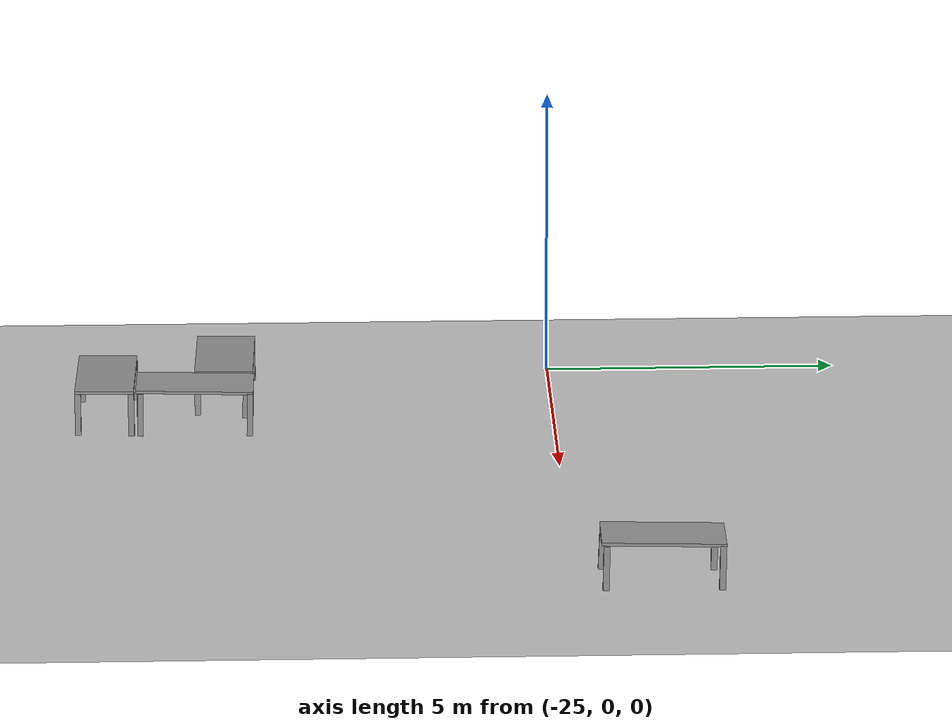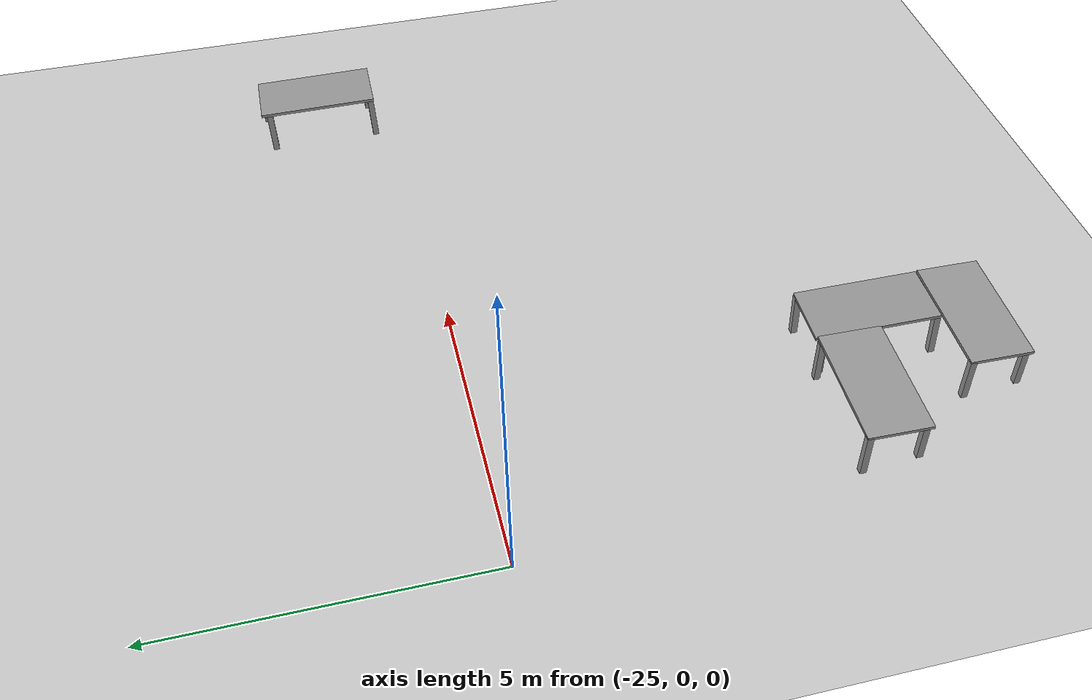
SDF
<sdf version="1.6">
 <world name="default">
  <model name="ground_plane">
   <static>1</static>
   <link name="link">
    <collision name="collision">
     <geometry><plane><normal>0 0 1</normal><size>100 100</size></plane></geometry>
     <surface><friction><ode><mu>100</mu><mu2>50</mu2></ode></friction></surface>
    </collision>
    <visual name="visual">
     <cast_shadows>0</cast_shadows>
     <geometry><plane><normal>0 0 1</normal><size>100 100</size></plane></geometry>
     <material>
      <script><uri>file://media/materials/scripts/gazebo.material</uri><name>Gazebo/Grey</name></script>
     </material>
    </visual>
   </link>
  </model>
  <model name="table">
   <link name="link_2">
    <pose>-0.000914 0.01077 -0.287764 0 -0 0</pose>
    <inertial>
     <mass>1</mass>
     <inertia>
      <ixx>0.166667</ixx>
      <ixy>0</ixy>
      <ixz>0</ixz>
      <iyy>0.166667</iyy>
      <iyz>0</iyz>
      <izz>0.166667</izz>
     </inertia>
    </inertial>
    <visual name="visual">
     <pose>0 0 0.75 0 -0 0</pose>
     <geometry><box><size>1 2 0.05</size></box></geometry>
     <material>
      <lighting>1</lighting>
      <script><uri>file://media/materials/scripts/gazebo.material</uri><name>Gazebo/Grey</name></script>
      <ambient>0.3 0.3 0.3 1</ambient>
      <diffuse>0.7 0.7 0.7 1</diffuse>
      <specular>0.01 0.01 0.01 1</specular>
      <emissive>0 0 0 1</emissive>
      <shader type="vertex"><normal_map>__default__</normal_map></shader>
     </material>
    </visual>
    <collision name="collision">
     <pose>0 0 0.75 0 -0 0</pose>
     <geometry><box><size>1 2 0.05</size></box></geometry>
     <surface>
      <friction>
       <ode><mu>1</mu><mu2>1</mu2><fdir1>0 0 0</fdir1><slip1>0</slip1><slip2>0</slip2></ode>
       <torsional>
        <coefficient>1</coefficient>
        <patch_radius>0</patch_radius>
        <surface_radius>0</surface_radius>
        <use_patch_radius>1</use_patch_radius>
        <ode><slip>0</slip></ode>
       </torsional>
      </friction>
      <bounce><restitution_coefficient>0</restitution_coefficient><threshold>1e+06</threshold></bounce>
      <contact>
       <collide_without_contact>0</collide_without_contact>
       <collide_without_contact_bitmask>1</collide_without_contact_bitmask>
       <collide_bitmask>1</collide_bitmask>
       <ode>
        <soft_cfm>0</soft_cfm>
        <soft_erp>0.2</soft_erp>
        <kp>1e+13</kp>
        <kd>1</kd>
        <max_vel>0.01</max_vel>
        <min_depth>0</min_depth>
       </ode>
       <bullet>
        <split_impulse>1</split_impulse>
        <split_impulse_penetration_threshold>-0.01</split_impulse_penetration_threshold>
        <soft_cfm>0</soft_cfm>
        <soft_erp>0.2</soft_erp>
        <kp>1e+13</kp>
        <kd>1</kd>
       </bullet>
      </contact>
     </surface>
    </collision>
   </link>
   <link name="link_3">
    <pose>-0.450914 0.87078 0.080236 0 -0 0</pose>
    <inertial>
     <mass>1</mass>
     <inertia>
      <ixx>0.166667</ixx>
      <ixy>0</ixy>
      <ixz>0</ixz>
      <iyy>0.166667</iyy>
      <iyz>0</iyz>
      <izz>0.166667</izz>
     </inertia>
    </inertial>
    <visual name="visual">
     <geometry><box><size>0.1 0.1 0.75</size></box></geometry>
     <material>
      <lighting>1</lighting>
      <script><uri>file://media/materials/scripts/gazebo.material</uri><name>Gazebo/Grey</name></script>
      <ambient>0.3 0.3 0.3 1</ambient>
      <diffuse>0.7 0.7 0.7 1</diffuse>
      <specular>0.01 0.01 0.01 1</specular>
      <emissive>0 0 0 1</emissive>
      <shader type="vertex"><normal_map>__default__</normal_map></shader>
     </material>
    </visual>
    <collision name="collision">
     <geometry><box><size>0.1 0.1 0.75</size></box></geometry>
     <surface>
      <friction>
       <ode><mu>1</mu><mu2>1</mu2><fdir1>0 0 0</fdir1><slip1>0</slip1><slip2>0</slip2></ode>
       <torsional>
        <coefficient>1</coefficient>
        <patch_radius>0</patch_radius>
        <surface_radius>0</surface_radius>
        <use_patch_radius>1</use_patch_radius>
        <ode><slip>0</slip></ode>
       </torsional>
      </friction>
      <bounce><restitution_coefficient>0</restitution_coefficient><threshold>1e+06</threshold></bounce>
      <contact>
       <collide_without_contact>0</collide_without_contact>
       <collide_without_contact_bitmask>1</collide_without_contact_bitmask>
       <collide_bitmask>1</collide_bitmask>
       <ode>
        <soft_cfm>0</soft_cfm>
        <soft_erp>0.2</soft_erp>
        <kp>1e+13</kp>
        <kd>1</kd>
        <max_vel>0.01</max_vel>
        <min_depth>0</min_depth>
       </ode>
       <bullet>
        <split_impulse>1</split_impulse>
        <split_impulse_penetration_threshold>-0.01</split_impulse_penetration_threshold>
        <soft_cfm>0</soft_cfm>
        <soft_erp>0.2</soft_erp>
        <kp>1e+13</kp>
        <kd>1</kd>
       </bullet>
      </contact>
     </surface>
    </collision>
   </link>
   <link name="link_3_clone_0">
    <pose>0.45366 -0.903088 0.047057 0 -0 0</pose>
    <inertial>
     <mass>1</mass>
     <inertia>
      <ixx>0.166667</ixx>
      <ixy>0</ixy>
      <ixz>0</ixz>
      <iyy>0.166667</iyy>
      <iyz>0</iyz>
      <izz>0.166667</izz>
     </inertia>
    </inertial>
    <visual name="visual">
     <geometry><box><size>0.1 0.1 0.75</size></box></geometry>
     <material>
      <lighting>1</lighting>
      <script><uri>file://media/materials/scripts/gazebo.material</uri><name>Gazebo/Grey</name></script>
      <ambient>0.3 0.3 0.3 1</ambient>
      <diffuse>0.7 0.7 0.7 1</diffuse>
      <specular>0.01 0.01 0.01 1</specular>
      <emissive>0 0 0 1</emissive>
      <shader type="vertex"><normal_map>__default__</normal_map></shader>
     </material>
    </visual>
    <collision name="collision">
     <geometry><box><size>0.1 0.1 0.75</size></box></geometry>
     <surface>
      <friction>
       <ode><mu>1</mu><mu2>1</mu2><fdir1>0 0 0</fdir1><slip1>0</slip1><slip2>0</slip2></ode>
       <torsional>
        <coefficient>1</coefficient>
        <patch_radius>0</patch_radius>
        <surface_radius>0</surface_radius>
        <use_patch_radius>1</use_patch_radius>
        <ode><slip>0</slip></ode>
       </torsional>
      </friction>
      <bounce><restitution_coefficient>0</restitution_coefficient><threshold>1e+06</threshold></bounce>
      <contact>
       <collide_without_contact>0</collide_without_contact>
       <collide_without_contact_bitmask>1</collide_without_contact_bitmask>
       <collide_bitmask>1</collide_bitmask>
       <ode>
        <soft_cfm>0</soft_cfm>
        <soft_erp>0.2</soft_erp>
        <kp>1e+13</kp>
        <kd>1</kd>
        <max_vel>0.01</max_vel>
        <min_depth>0</min_depth>
       </ode>
       <bullet>
        <split_impulse>1</split_impulse>
        <split_impulse_penetration_threshold>-0.01</split_impulse_penetration_threshold>
        <soft_cfm>0</soft_cfm>
        <soft_erp>0.2</soft_erp>
        <kp>1e+13</kp>
        <kd>1</kd>
       </bullet>
      </contact>
     </surface>
    </collision>
   </link>
   <link name="link_3_clone_0_clone">
    <pose>-0.450914 -0.93923 0.080236 -0.02 0 0</pose>
    <inertial>
     <mass>1</mass>
     <inertia>
      <ixx>0.166667</ixx>
      <ixy>0</ixy>
      <ixz>0</ixz>
      <iyy>0.166667</iyy>
      <iyz>0</iyz>
      <izz>0.166667</izz>
     </inertia>
    </inertial>
    <visual name="visual">
     <geometry><box><size>0.1 0.1 0.75</size></box></geometry>
     <material>
      <lighting>1</lighting>
      <script><uri>file://media/materials/scripts/gazebo.material</uri><name>Gazebo/Grey</name></script>
      <ambient>0.3 0.3 0.3 1</ambient>
      <diffuse>0.7 0.7 0.7 1</diffuse>
      <specular>0.01 0.01 0.01 1</specular>
      <emissive>0 0 0 1</emissive>
      <shader type="vertex"><normal_map>__default__</normal_map></shader>
     </material>
    </visual>
    <collision name="collision">
     <geometry><box><size>0.1 0.1 0.75</size></box></geometry>
     <surface>
      <friction>
       <ode><mu>1</mu><mu2>1</mu2><fdir1>0 0 0</fdir1><slip1>0</slip1><slip2>0</slip2></ode>
       <torsional>
        <coefficient>1</coefficient>
        <patch_radius>0</patch_radius>
        <surface_radius>0</surface_radius>
        <use_patch_radius>1</use_patch_radius>
        <ode><slip>0</slip></ode>
       </torsional>
      </friction>
      <bounce><restitution_coefficient>0</restitution_coefficient><threshold>1e+06</threshold></bounce>
      <contact>
       <collide_without_contact>0</collide_without_contact>
       <collide_without_contact_bitmask>1</collide_without_contact_bitmask>
       <collide_bitmask>1</collide_bitmask>
       <ode>
        <soft_cfm>0</soft_cfm>
        <soft_erp>0.2</soft_erp>
        <kp>1e+13</kp>
        <kd>1</kd>
        <max_vel>0.01</max_vel>
        <min_depth>0</min_depth>
       </ode>
       <bullet>
        <split_impulse>1</split_impulse>
        <split_impulse_penetration_threshold>-0.01</split_impulse_penetration_threshold>
        <soft_cfm>0</soft_cfm>
        <soft_erp>0.2</soft_erp>
        <kp>1e+13</kp>
        <kd>1</kd>
       </bullet>
      </contact>
     </surface>
    </collision>
   </link>
   <link name="link_3_clone_1">
    <pose>0.449089 0.960775 0.080236 0 -0 0</pose>
    <inertial>
     <mass>1</mass>
     <inertia>
      <ixx>0.166667</ixx>
      <ixy>0</ixy>
      <ixz>0</ixz>
      <iyy>0.166667</iyy>
      <iyz>0</iyz>
      <izz>0.166667</izz>
     </inertia>
    </inertial>
    <visual name="visual">
     <geometry><box><size>0.1 0.1 0.75</size></box></geometry>
     <material>
      <lighting>1</lighting>
      <script><uri>file://media/materials/scripts/gazebo.material</uri><name>Gazebo/Grey</name></script>
      <ambient>0.3 0.3 0.3 1</ambient>
      <diffuse>0.7 0.7 0.7 1</diffuse>
      <specular>0.01 0.01 0.01 1</specular>
      <emissive>0 0 0 1</emissive>
      <shader type="vertex"><normal_map>__default__</normal_map></shader>
     </material>
    </visual>
    <collision name="collision">
     <geometry><box><size>0.1 0.1 0.75</size></box></geometry>
     <surface>
      <friction>
       <ode><mu>1</mu><mu2>1</mu2><fdir1>0 0 0</fdir1><slip1>0</slip1><slip2>0</slip2></ode>
       <torsional>
        <coefficient>1</coefficient>
        <patch_radius>0</patch_radius>
        <surface_radius>0</surface_radius>
        <use_patch_radius>1</use_patch_radius>
        <ode><slip>0</slip></ode>
       </torsional>
      </friction>
      <bounce><restitution_coefficient>0</restitution_coefficient><threshold>1e+06</threshold></bounce>
      <contact>
       <collide_without_contact>0</collide_without_contact>
       <collide_without_contact_bitmask>1</collide_without_contact_bitmask>
       <collide_bitmask>1</collide_bitmask>
       <ode>
        <soft_cfm>0</soft_cfm>
        <soft_erp>0.2</soft_erp>
        <kp>1e+13</kp>
        <kd>1</kd>
        <max_vel>0.01</max_vel>
        <min_depth>0</min_depth>
       </ode>
       <bullet>
        <split_impulse>1</split_impulse>
        <split_impulse_penetration_threshold>-0.01</split_impulse_penetration_threshold>
        <soft_cfm>0</soft_cfm>
        <soft_erp>0.2</soft_erp>
        <kp>1e+13</kp>
        <kd>1</kd>
       </bullet>
      </contact>
     </surface>
    </collision>
   </link>
   <joint name="link_2_JOINT_10" type="fixed">
    <parent>link_2</parent>
    <child>link_3_clone_1</child>
    <physics>
     <ode><limit><cfm>0</cfm><erp>0.2</erp></limit><suspension><cfm>0</cfm><erp>0.2</erp></suspension></ode>
    </physics>
   </joint>
   <joint name="link_2_JOINT_11" type="fixed">
    <parent>link_2</parent>
    <child>link_3</child>
    <physics>
     <ode><limit><cfm>0</cfm><erp>0.2</erp></limit><suspension><cfm>0</cfm><erp>0.2</erp></suspension></ode>
    </physics>
   </joint>
   <joint name="link_2_JOINT_12" type="fixed">
    <parent>link_2</parent>
    <child>link_3_clone_0_clone</child>
    <physics>
     <ode><limit><cfm>0</cfm><erp>0.2</erp></limit><suspension><cfm>0</cfm><erp>0.2</erp></suspension></ode>
    </physics>
   </joint>
   <joint name="link_2_JOINT_8" type="fixed">
    <parent>link_2</parent>
    <child>link_3_clone_0</child>
    <physics>
     <ode><limit><cfm>0</cfm><erp>0.2</erp></limit><suspension><cfm>0</cfm><erp>0.2</erp></suspension></ode>
    </physics>
   </joint>
   <joint name="link_2_JOINT_9" type="fixed">
    <parent>link_2</parent>
    <child>link_3</child>
    <physics>
     <ode><limit><cfm>0</cfm><erp>0.2</erp></limit><suspension><cfm>0</cfm><erp>0.2</erp></suspension></ode>
    </physics>
   </joint>
   <static>0</static>
   <pose>-14.5412 1.38149 0.311988 -0.01779 -0.001786 -0.013764</pose>
  </model>
  <model name="table_0">
   <link name="link_2">
    <pose>-0.000914 0.01077 -0.287764 0 -0 0</pose>
    <inertial>
     <mass>1</mass>
     <inertia>
      <ixx>0.166667</ixx>
      <ixy>0</ixy>
      <ixz>0</ixz>
      <iyy>0.166667</iyy>
      <iyz>0</iyz>
      <izz>0.166667</izz>
     </inertia>
    </inertial>
    <visual name="visual">
     <pose>0 0 0.75 0 -0 0</pose>
     <geometry><box><size>1 2 0.05</size></box></geometry>
     <material>
      <lighting>1</lighting>
      <script><uri>file://media/materials/scripts/gazebo.material</uri><name>Gazebo/Grey</name></script>
      <ambient>0.3 0.3 0.3 1</ambient>
      <diffuse>0.7 0.7 0.7 1</diffuse>
      <specular>0.01 0.01 0.01 1</specular>
      <emissive>0 0 0 1</emissive>
      <shader type="vertex"><normal_map>__default__</normal_map></shader>
     </material>
    </visual>
    <collision name="collision">
     <pose>0 0 0.75 0 -0 0</pose>
     <geometry><box><size>1 2 0.05</size></box></geometry>
     <surface>
      <friction>
       <ode><mu>1</mu><mu2>1</mu2><fdir1>0 0 0</fdir1><slip1>0</slip1><slip2>0</slip2></ode>
       <torsional>
        <coefficient>1</coefficient>
        <patch_radius>0</patch_radius>
        <surface_radius>0</surface_radius>
        <use_patch_radius>1</use_patch_radius>
        <ode><slip>0</slip></ode>
       </torsional>
      </friction>
      <bounce><restitution_coefficient>0</restitution_coefficient><threshold>1e+06</threshold></bounce>
      <contact>
       <collide_without_contact>0</collide_without_contact>
       <collide_without_contact_bitmask>1</collide_without_contact_bitmask>
       <collide_bitmask>1</collide_bitmask>
       <ode>
        <soft_cfm>0</soft_cfm>
        <soft_erp>0.2</soft_erp>
        <kp>1e+13</kp>
        <kd>1</kd>
        <max_vel>0.01</max_vel>
        <min_depth>0</min_depth>
       </ode>
       <bullet>
        <split_impulse>1</split_impulse>
        <split_impulse_penetration_threshold>-0.01</split_impulse_penetration_threshold>
        <soft_cfm>0</soft_cfm>
        <soft_erp>0.2</soft_erp>
        <kp>1e+13</kp>
        <kd>1</kd>
       </bullet>
      </contact>
     </surface>
    </collision>
   </link>
   <link name="link_3">
    <pose>-0.450914 0.87078 0.080236 0 -0 0</pose>
    <inertial>
     <mass>1</mass>
     <inertia>
      <ixx>0.166667</ixx>
      <ixy>0</ixy>
      <ixz>0</ixz>
      <iyy>0.166667</iyy>
      <iyz>0</iyz>
      <izz>0.166667</izz>
     </inertia>
    </inertial>
    <visual name="visual">
     <geometry><box><size>0.1 0.1 0.75</size></box></geometry>
     <material>
      <lighting>1</lighting>
      <script><uri>file://media/materials/scripts/gazebo.material</uri><name>Gazebo/Grey</name></script>
      <ambient>0.3 0.3 0.3 1</ambient>
      <diffuse>0.7 0.7 0.7 1</diffuse>
      <specular>0.01 0.01 0.01 1</specular>
      <emissive>0 0 0 1</emissive>
      <shader type="vertex"><normal_map>__default__</normal_map></shader>
     </material>
    </visual>
    <collision name="collision">
     <geometry><box><size>0.1 0.1 0.75</size></box></geometry>
     <surface>
      <friction>
       <ode><mu>1</mu><mu2>1</mu2><fdir1>0 0 0</fdir1><slip1>0</slip1><slip2>0</slip2></ode>
       <torsional>
        <coefficient>1</coefficient>
        <patch_radius>0</patch_radius>
        <surface_radius>0</surface_radius>
        <use_patch_radius>1</use_patch_radius>
        <ode><slip>0</slip></ode>
       </torsional>
      </friction>
      <bounce><restitution_coefficient>0</restitution_coefficient><threshold>1e+06</threshold></bounce>
      <contact>
       <collide_without_contact>0</collide_without_contact>
       <collide_without_contact_bitmask>1</collide_without_contact_bitmask>
       <collide_bitmask>1</collide_bitmask>
       <ode>
        <soft_cfm>0</soft_cfm>
        <soft_erp>0.2</soft_erp>
        <kp>1e+13</kp>
        <kd>1</kd>
        <max_vel>0.01</max_vel>
        <min_depth>0</min_depth>
       </ode>
       <bullet>
        <split_impulse>1</split_impulse>
        <split_impulse_penetration_threshold>-0.01</split_impulse_penetration_threshold>
        <soft_cfm>0</soft_cfm>
        <soft_erp>0.2</soft_erp>
        <kp>1e+13</kp>
        <kd>1</kd>
       </bullet>
      </contact>
     </surface>
    </collision>
   </link>
   <link name="link_3_clone_0">
    <pose>0.45366 -0.903088 0.047057 0 -0 0</pose>
    <inertial>
     <mass>1</mass>
     <inertia>
      <ixx>0.166667</ixx>
      <ixy>0</ixy>
      <ixz>0</ixz>
      <iyy>0.166667</iyy>
      <iyz>0</iyz>
      <izz>0.166667</izz>
     </inertia>
    </inertial>
    <visual name="visual">
     <geometry><box><size>0.1 0.1 0.75</size></box></geometry>
     <material>
      <lighting>1</lighting>
      <script><uri>file://media/materials/scripts/gazebo.material</uri><name>Gazebo/Grey</name></script>
      <ambient>0.3 0.3 0.3 1</ambient>
      <diffuse>0.7 0.7 0.7 1</diffuse>
      <specular>0.01 0.01 0.01 1</specular>
      <emissive>0 0 0 1</emissive>
      <shader type="vertex"><normal_map>__default__</normal_map></shader>
     </material>
    </visual>
    <collision name="collision">
     <geometry><box><size>0.1 0.1 0.75</size></box></geometry>
     <surface>
      <friction>
       <ode><mu>1</mu><mu2>1</mu2><fdir1>0 0 0</fdir1><slip1>0</slip1><slip2>0</slip2></ode>
       <torsional>
        <coefficient>1</coefficient>
        <patch_radius>0</patch_radius>
        <surface_radius>0</surface_radius>
        <use_patch_radius>1</use_patch_radius>
        <ode><slip>0</slip></ode>
       </torsional>
      </friction>
      <bounce><restitution_coefficient>0</restitution_coefficient><threshold>1e+06</threshold></bounce>
      <contact>
       <collide_without_contact>0</collide_without_contact>
       <collide_without_contact_bitmask>1</collide_without_contact_bitmask>
       <collide_bitmask>1</collide_bitmask>
       <ode>
        <soft_cfm>0</soft_cfm>
        <soft_erp>0.2</soft_erp>
        <kp>1e+13</kp>
        <kd>1</kd>
        <max_vel>0.01</max_vel>
        <min_depth>0</min_depth>
       </ode>
       <bullet>
        <split_impulse>1</split_impulse>
        <split_impulse_penetration_threshold>-0.01</split_impulse_penetration_threshold>
        <soft_cfm>0</soft_cfm>
        <soft_erp>0.2</soft_erp>
        <kp>1e+13</kp>
        <kd>1</kd>
       </bullet>
      </contact>
     </surface>
    </collision>
   </link>
   <link name="link_3_clone_0_clone">
    <pose>-0.450914 -0.93923 0.080236 -0.02 0 0</pose>
    <inertial>
     <mass>1</mass>
     <inertia>
      <ixx>0.166667</ixx>
      <ixy>0</ixy>
      <ixz>0</ixz>
      <iyy>0.166667</iyy>
      <iyz>0</iyz>
      <izz>0.166667</izz>
     </inertia>
    </inertial>
    <visual name="visual">
     <geometry><box><size>0.1 0.1 0.75</size></box></geometry>
     <material>
      <lighting>1</lighting>
      <script><uri>file://media/materials/scripts/gazebo.material</uri><name>Gazebo/Grey</name></script>
      <ambient>0.3 0.3 0.3 1</ambient>
      <diffuse>0.7 0.7 0.7 1</diffuse>
      <specular>0.01 0.01 0.01 1</specular>
      <emissive>0 0 0 1</emissive>
      <shader type="vertex"><normal_map>__default__</normal_map></shader>
     </material>
    </visual>
    <collision name="collision">
     <geometry><box><size>0.1 0.1 0.75</size></box></geometry>
     <surface>
      <friction>
       <ode><mu>1</mu><mu2>1</mu2><fdir1>0 0 0</fdir1><slip1>0</slip1><slip2>0</slip2></ode>
       <torsional>
        <coefficient>1</coefficient>
        <patch_radius>0</patch_radius>
        <surface_radius>0</surface_radius>
        <use_patch_radius>1</use_patch_radius>
        <ode><slip>0</slip></ode>
       </torsional>
      </friction>
      <bounce><restitution_coefficient>0</restitution_coefficient><threshold>1e+06</threshold></bounce>
      <contact>
       <collide_without_contact>0</collide_without_contact>
       <collide_without_contact_bitmask>1</collide_without_contact_bitmask>
       <collide_bitmask>1</collide_bitmask>
       <ode>
        <soft_cfm>0</soft_cfm>
        <soft_erp>0.2</soft_erp>
        <kp>1e+13</kp>
        <kd>1</kd>
        <max_vel>0.01</max_vel>
        <min_depth>0</min_depth>
       </ode>
       <bullet>
        <split_impulse>1</split_impulse>
        <split_impulse_penetration_threshold>-0.01</split_impulse_penetration_threshold>
        <soft_cfm>0</soft_cfm>
        <soft_erp>0.2</soft_erp>
        <kp>1e+13</kp>
        <kd>1</kd>
       </bullet>
      </contact>
     </surface>
    </collision>
   </link>
   <link name="link_3_clone_1">
    <pose>0.449089 0.960775 0.080236 0 -0 0</pose>
    <inertial>
     <mass>1</mass>
     <inertia>
      <ixx>0.166667</ixx>
      <ixy>0</ixy>
      <ixz>0</ixz>
      <iyy>0.166667</iyy>
      <iyz>0</iyz>
      <izz>0.166667</izz>
     </inertia>
    </inertial>
    <visual name="visual">
     <geometry><box><size>0.1 0.1 0.75</size></box></geometry>
     <material>
      <lighting>1</lighting>
      <script><uri>file://media/materials/scripts/gazebo.material</uri><name>Gazebo/Grey</name></script>
      <ambient>0.3 0.3 0.3 1</ambient>
      <diffuse>0.7 0.7 0.7 1</diffuse>
      <specular>0.01 0.01 0.01 1</specular>
      <emissive>0 0 0 1</emissive>
      <shader type="vertex"><normal_map>__default__</normal_map></shader>
     </material>
    </visual>
    <collision name="collision">
     <geometry><box><size>0.1 0.1 0.75</size></box></geometry>
     <surface>
      <friction>
       <ode><mu>1</mu><mu2>1</mu2><fdir1>0 0 0</fdir1><slip1>0</slip1><slip2>0</slip2></ode>
       <torsional>
        <coefficient>1</coefficient>
        <patch_radius>0</patch_radius>
        <surface_radius>0</surface_radius>
        <use_patch_radius>1</use_patch_radius>
        <ode><slip>0</slip></ode>
       </torsional>
      </friction>
      <bounce><restitution_coefficient>0</restitution_coefficient><threshold>1e+06</threshold></bounce>
      <contact>
       <collide_without_contact>0</collide_without_contact>
       <collide_without_contact_bitmask>1</collide_without_contact_bitmask>
       <collide_bitmask>1</collide_bitmask>
       <ode>
        <soft_cfm>0</soft_cfm>
        <soft_erp>0.2</soft_erp>
        <kp>1e+13</kp>
        <kd>1</kd>
        <max_vel>0.01</max_vel>
        <min_depth>0</min_depth>
       </ode>
       <bullet>
        <split_impulse>1</split_impulse>
        <split_impulse_penetration_threshold>-0.01</split_impulse_penetration_threshold>
        <soft_cfm>0</soft_cfm>
        <soft_erp>0.2</soft_erp>
        <kp>1e+13</kp>
        <kd>1</kd>
       </bullet>
      </contact>
     </surface>
    </collision>
   </link>
   <joint name="link_2_JOINT_10" type="fixed">
    <parent>link_2</parent>
    <child>link_3_clone_1</child>
    <physics>
     <ode><limit><cfm>0</cfm><erp>0.2</erp></limit><suspension><cfm>0</cfm><erp>0.2</erp></suspension></ode>
    </physics>
   </joint>
   <joint name="link_2_JOINT_11" type="fixed">
    <parent>link_2</parent>
    <child>link_3</child>
    <physics>
     <ode><limit><cfm>0</cfm><erp>0.2</erp></limit><suspension><cfm>0</cfm><erp>0.2</erp></suspension></ode>
    </physics>
   </joint>
   <joint name="link_2_JOINT_12" type="fixed">
    <parent>link_2</parent>
    <child>link_3_clone_0_clone</child>
    <physics>
     <ode><limit><cfm>0</cfm><erp>0.2</erp></limit><suspension><cfm>0</cfm><erp>0.2</erp></suspension></ode>
    </physics>
   </joint>
   <joint name="link_2_JOINT_8" type="fixed">
    <parent>link_2</parent>
    <child>link_3_clone_0</child>
    <physics>
     <ode><limit><cfm>0</cfm><erp>0.2</erp></limit><suspension><cfm>0</cfm><erp>0.2</erp></suspension></ode>
    </physics>
   </joint>
   <joint name="link_2_JOINT_9" type="fixed">
    <parent>link_2</parent>
    <child>link_3</child>
    <physics>
     <ode><limit><cfm>0</cfm><erp>0.2</erp></limit><suspension><cfm>0</cfm><erp>0.2</erp></suspension></ode>
    </physics>
   </joint>
   <static>0</static>
   <pose>-22.1968 -6.1505 0.311992 -0.017791 -0.001786 -0.020648</pose>
  </model>
  <model name="table_1">
   <link name="link_2">
    <pose>-0.000914 0.01077 -0.287764 0 -0 0</pose>
    <inertial>
     <mass>1</mass>
     <inertia>
      <ixx>0.166667</ixx>
      <ixy>0</ixy>
      <ixz>0</ixz>
      <iyy>0.166667</iyy>
      <iyz>0</iyz>
      <izz>0.166667</izz>
     </inertia>
    </inertial>
    <visual name="visual">
     <pose>0 0 0.75 0 -0 0</pose>
     <geometry><box><size>1 2 0.05</size></box></geometry>
     <material>
      <lighting>1</lighting>
      <script><uri>file://media/materials/scripts/gazebo.material</uri><name>Gazebo/Grey</name></script>
      <ambient>0.3 0.3 0.3 1</ambient>
      <diffuse>0.7 0.7 0.7 1</diffuse>
      <specular>0.01 0.01 0.01 1</specular>
      <emissive>0 0 0 1</emissive>
      <shader type="vertex"><normal_map>__default__</normal_map></shader>
     </material>
    </visual>
    <collision name="collision">
     <pose>0 0 0.75 0 -0 0</pose>
     <geometry><box><size>1 2 0.05</size></box></geometry>
     <surface>
      <friction>
       <ode><mu>1</mu><mu2>1</mu2><fdir1>0 0 0</fdir1><slip1>0</slip1><slip2>0</slip2></ode>
       <torsional>
        <coefficient>1</coefficient>
        <patch_radius>0</patch_radius>
        <surface_radius>0</surface_radius>
        <use_patch_radius>1</use_patch_radius>
        <ode><slip>0</slip></ode>
       </torsional>
      </friction>
      <bounce><restitution_coefficient>0</restitution_coefficient><threshold>1e+06</threshold></bounce>
      <contact>
       <collide_without_contact>0</collide_without_contact>
       <collide_without_contact_bitmask>1</collide_without_contact_bitmask>
       <collide_bitmask>1</collide_bitmask>
       <ode>
        <soft_cfm>0</soft_cfm>
        <soft_erp>0.2</soft_erp>
        <kp>1e+13</kp>
        <kd>1</kd>
        <max_vel>0.01</max_vel>
        <min_depth>0</min_depth>
       </ode>
       <bullet>
        <split_impulse>1</split_impulse>
        <split_impulse_penetration_threshold>-0.01</split_impulse_penetration_threshold>
        <soft_cfm>0</soft_cfm>
        <soft_erp>0.2</soft_erp>
        <kp>1e+13</kp>
        <kd>1</kd>
       </bullet>
      </contact>
     </surface>
    </collision>
   </link>
   <link name="link_3">
    <pose>-0.450914 0.87078 0.080236 0 -0 0</pose>
    <inertial>
     <mass>1</mass>
     <inertia>
      <ixx>0.166667</ixx>
      <ixy>0</ixy>
      <ixz>0</ixz>
      <iyy>0.166667</iyy>
      <iyz>0</iyz>
      <izz>0.166667</izz>
     </inertia>
    </inertial>
    <visual name="visual">
     <geometry><box><size>0.1 0.1 0.75</size></box></geometry>
     <material>
      <lighting>1</lighting>
      <script><uri>file://media/materials/scripts/gazebo.material</uri><name>Gazebo/Grey</name></script>
      <ambient>0.3 0.3 0.3 1</ambient>
      <diffuse>0.7 0.7 0.7 1</diffuse>
      <specular>0.01 0.01 0.01 1</specular>
      <emissive>0 0 0 1</emissive>
      <shader type="vertex"><normal_map>__default__</normal_map></shader>
     </material>
    </visual>
    <collision name="collision">
     <geometry><box><size>0.1 0.1 0.75</size></box></geometry>
     <surface>
      <friction>
       <ode><mu>1</mu><mu2>1</mu2><fdir1>0 0 0</fdir1><slip1>0</slip1><slip2>0</slip2></ode>
       <torsional>
        <coefficient>1</coefficient>
        <patch_radius>0</patch_radius>
        <surface_radius>0</surface_radius>
        <use_patch_radius>1</use_patch_radius>
        <ode><slip>0</slip></ode>
       </torsional>
      </friction>
      <bounce><restitution_coefficient>0</restitution_coefficient><threshold>1e+06</threshold></bounce>
      <contact>
       <collide_without_contact>0</collide_without_contact>
       <collide_without_contact_bitmask>1</collide_without_contact_bitmask>
       <collide_bitmask>1</collide_bitmask>
       <ode>
        <soft_cfm>0</soft_cfm>
        <soft_erp>0.2</soft_erp>
        <kp>1e+13</kp>
        <kd>1</kd>
        <max_vel>0.01</max_vel>
        <min_depth>0</min_depth>
       </ode>
       <bullet>
        <split_impulse>1</split_impulse>
        <split_impulse_penetration_threshold>-0.01</split_impulse_penetration_threshold>
        <soft_cfm>0</soft_cfm>
        <soft_erp>0.2</soft_erp>
        <kp>1e+13</kp>
        <kd>1</kd>
       </bullet>
      </contact>
     </surface>
    </collision>
   </link>
   <link name="link_3_clone_0">
    <pose>0.45366 -0.903088 0.047057 0 -0 0</pose>
    <inertial>
     <mass>1</mass>
     <inertia>
      <ixx>0.166667</ixx>
      <ixy>0</ixy>
      <ixz>0</ixz>
      <iyy>0.166667</iyy>
      <iyz>0</iyz>
      <izz>0.166667</izz>
     </inertia>
    </inertial>
    <visual name="visual">
     <geometry><box><size>0.1 0.1 0.75</size></box></geometry>
     <material>
      <lighting>1</lighting>
      <script><uri>file://media/materials/scripts/gazebo.material</uri><name>Gazebo/Grey</name></script>
      <ambient>0.3 0.3 0.3 1</ambient>
      <diffuse>0.7 0.7 0.7 1</diffuse>
      <specular>0.01 0.01 0.01 1</specular>
      <emissive>0 0 0 1</emissive>
      <shader type="vertex"><normal_map>__default__</normal_map></shader>
     </material>
    </visual>
    <collision name="collision">
     <geometry><box><size>0.1 0.1 0.75</size></box></geometry>
     <surface>
      <friction>
       <ode><mu>1</mu><mu2>1</mu2><fdir1>0 0 0</fdir1><slip1>0</slip1><slip2>0</slip2></ode>
       <torsional>
        <coefficient>1</coefficient>
        <patch_radius>0</patch_radius>
        <surface_radius>0</surface_radius>
        <use_patch_radius>1</use_patch_radius>
        <ode><slip>0</slip></ode>
       </torsional>
      </friction>
      <bounce><restitution_coefficient>0</restitution_coefficient><threshold>1e+06</threshold></bounce>
      <contact>
       <collide_without_contact>0</collide_without_contact>
       <collide_without_contact_bitmask>1</collide_without_contact_bitmask>
       <collide_bitmask>1</collide_bitmask>
       <ode>
        <soft_cfm>0</soft_cfm>
        <soft_erp>0.2</soft_erp>
        <kp>1e+13</kp>
        <kd>1</kd>
        <max_vel>0.01</max_vel>
        <min_depth>0</min_depth>
       </ode>
       <bullet>
        <split_impulse>1</split_impulse>
        <split_impulse_penetration_threshold>-0.01</split_impulse_penetration_threshold>
        <soft_cfm>0</soft_cfm>
        <soft_erp>0.2</soft_erp>
        <kp>1e+13</kp>
        <kd>1</kd>
       </bullet>
      </contact>
     </surface>
    </collision>
   </link>
   <link name="link_3_clone_0_clone">
    <pose>-0.450914 -0.93923 0.080236 -0.02 0 0</pose>
    <inertial>
     <mass>1</mass>
     <inertia>
      <ixx>0.166667</ixx>
      <ixy>0</ixy>
      <ixz>0</ixz>
      <iyy>0.166667</iyy>
      <iyz>0</iyz>
      <izz>0.166667</izz>
     </inertia>
    </inertial>
    <visual name="visual">
     <geometry><box><size>0.1 0.1 0.75</size></box></geometry>
     <material>
      <lighting>1</lighting>
      <script><uri>file://media/materials/scripts/gazebo.material</uri><name>Gazebo/Grey</name></script>
      <ambient>0.3 0.3 0.3 1</ambient>
      <diffuse>0.7 0.7 0.7 1</diffuse>
      <specular>0.01 0.01 0.01 1</specular>
      <emissive>0 0 0 1</emissive>
      <shader type="vertex"><normal_map>__default__</normal_map></shader>
     </material>
    </visual>
    <collision name="collision">
     <geometry><box><size>0.1 0.1 0.75</size></box></geometry>
     <surface>
      <friction>
       <ode><mu>1</mu><mu2>1</mu2><fdir1>0 0 0</fdir1><slip1>0</slip1><slip2>0</slip2></ode>
       <torsional>
        <coefficient>1</coefficient>
        <patch_radius>0</patch_radius>
        <surface_radius>0</surface_radius>
        <use_patch_radius>1</use_patch_radius>
        <ode><slip>0</slip></ode>
       </torsional>
      </friction>
      <bounce><restitution_coefficient>0</restitution_coefficient><threshold>1e+06</threshold></bounce>
      <contact>
       <collide_without_contact>0</collide_without_contact>
       <collide_without_contact_bitmask>1</collide_without_contact_bitmask>
       <collide_bitmask>1</collide_bitmask>
       <ode>
        <soft_cfm>0</soft_cfm>
        <soft_erp>0.2</soft_erp>
        <kp>1e+13</kp>
        <kd>1</kd>
        <max_vel>0.01</max_vel>
        <min_depth>0</min_depth>
       </ode>
       <bullet>
        <split_impulse>1</split_impulse>
        <split_impulse_penetration_threshold>-0.01</split_impulse_penetration_threshold>
        <soft_cfm>0</soft_cfm>
        <soft_erp>0.2</soft_erp>
        <kp>1e+13</kp>
        <kd>1</kd>
       </bullet>
      </contact>
     </surface>
    </collision>
   </link>
   <link name="link_3_clone_1">
    <pose>0.449089 0.960775 0.080236 0 -0 0</pose>
    <inertial>
     <mass>1</mass>
     <inertia>
      <ixx>0.166667</ixx>
      <ixy>0</ixy>
      <ixz>0</ixz>
      <iyy>0.166667</iyy>
      <iyz>0</iyz>
      <izz>0.166667</izz>
     </inertia>
    </inertial>
    <visual name="visual">
     <geometry><box><size>0.1 0.1 0.75</size></box></geometry>
     <material>
      <lighting>1</lighting>
      <script><uri>file://media/materials/scripts/gazebo.material</uri><name>Gazebo/Grey</name></script>
      <ambient>0.3 0.3 0.3 1</ambient>
      <diffuse>0.7 0.7 0.7 1</diffuse>
      <specular>0.01 0.01 0.01 1</specular>
      <emissive>0 0 0 1</emissive>
      <shader type="vertex"><normal_map>__default__</normal_map></shader>
     </material>
    </visual>
    <collision name="collision">
     <geometry><box><size>0.1 0.1 0.75</size></box></geometry>
     <surface>
      <friction>
       <ode><mu>1</mu><mu2>1</mu2><fdir1>0 0 0</fdir1><slip1>0</slip1><slip2>0</slip2></ode>
       <torsional>
        <coefficient>1</coefficient>
        <patch_radius>0</patch_radius>
        <surface_radius>0</surface_radius>
        <use_patch_radius>1</use_patch_radius>
        <ode><slip>0</slip></ode>
       </torsional>
      </friction>
      <bounce><restitution_coefficient>0</restitution_coefficient><threshold>1e+06</threshold></bounce>
      <contact>
       <collide_without_contact>0</collide_without_contact>
       <collide_without_contact_bitmask>1</collide_without_contact_bitmask>
       <collide_bitmask>1</collide_bitmask>
       <ode>
        <soft_cfm>0</soft_cfm>
        <soft_erp>0.2</soft_erp>
        <kp>1e+13</kp>
        <kd>1</kd>
        <max_vel>0.01</max_vel>
        <min_depth>0</min_depth>
       </ode>
       <bullet>
        <split_impulse>1</split_impulse>
        <split_impulse_penetration_threshold>-0.01</split_impulse_penetration_threshold>
        <soft_cfm>0</soft_cfm>
        <soft_erp>0.2</soft_erp>
        <kp>1e+13</kp>
        <kd>1</kd>
       </bullet>
      </contact>
     </surface>
    </collision>
   </link>
   <joint name="link_2_JOINT_10" type="fixed">
    <parent>link_2</parent>
    <child>link_3_clone_1</child>
    <physics>
     <ode><limit><cfm>0</cfm><erp>0.2</erp></limit><suspension><cfm>0</cfm><erp>0.2</erp></suspension></ode>
    </physics>
   </joint>
   <joint name="link_2_JOINT_11" type="fixed">
    <parent>link_2</parent>
    <child>link_3</child>
    <physics>
     <ode><limit><cfm>0</cfm><erp>0.2</erp></limit><suspension><cfm>0</cfm><erp>0.2</erp></suspension></ode>
    </physics>
   </joint>
   <joint name="link_2_JOINT_12" type="fixed">
    <parent>link_2</parent>
    <child>link_3_clone_0_clone</child>
    <physics>
     <ode><limit><cfm>0</cfm><erp>0.2</erp></limit><suspension><cfm>0</cfm><erp>0.2</erp></suspension></ode>
    </physics>
   </joint>
   <joint name="link_2_JOINT_8" type="fixed">
    <parent>link_2</parent>
    <child>link_3_clone_0</child>
    <physics>
     <ode><limit><cfm>0</cfm><erp>0.2</erp></limit><suspension><cfm>0</cfm><erp>0.2</erp></suspension></ode>
    </physics>
   </joint>
   <joint name="link_2_JOINT_9" type="fixed">
    <parent>link_2</parent>
    <child>link_3</child>
    <physics>
     <ode><limit><cfm>0</cfm><erp>0.2</erp></limit><suspension><cfm>0</cfm><erp>0.2</erp></suspension></ode>
    </physics>
   </joint>
   <static>0</static>
   <pose>-22.6917 -7.65404 0.311988 -0.017786 -0.001795 1.55188</pose>
  </model>
  <model name="table_2">
   <link name="link_2">
    <pose>-0.000914 0.01077 -0.287764 0 -0 0</pose>
    <inertial>
     <mass>1</mass>
     <inertia>
      <ixx>0.166667</ixx>
      <ixy>0</ixy>
      <ixz>0</ixz>
      <iyy>0.166667</iyy>
      <iyz>0</iyz>
      <izz>0.166667</izz>
     </inertia>
    </inertial>
    <visual name="visual">
     <pose>0 0 0.75 0 -0 0</pose>
     <geometry><box><size>1 2 0.05</size></box></geometry>
     <material>
      <lighting>1</lighting>
      <script><uri>file://media/materials/scripts/gazebo.material</uri><name>Gazebo/Grey</name></script>
      <ambient>0.3 0.3 0.3 1</ambient>
      <diffuse>0.7 0.7 0.7 1</diffuse>
      <specular>0.01 0.01 0.01 1</specular>
      <emissive>0 0 0 1</emissive>
      <shader type="vertex"><normal_map>__default__</normal_map></shader>
     </material>
    </visual>
    <collision name="collision">
     <pose>0 0 0.75 0 -0 0</pose>
     <geometry><box><size>1 2 0.05</size></box></geometry>
     <surface>
      <friction>
       <ode><mu>1</mu><mu2>1</mu2><fdir1>0 0 0</fdir1><slip1>0</slip1><slip2>0</slip2></ode>
       <torsional>
        <coefficient>1</coefficient>
        <patch_radius>0</patch_radius>
        <surface_radius>0</surface_radius>
        <use_patch_radius>1</use_patch_radius>
        <ode><slip>0</slip></ode>
       </torsional>
      </friction>
      <bounce><restitution_coefficient>0</restitution_coefficient><threshold>1e+06</threshold></bounce>
      <contact>
       <collide_without_contact>0</collide_without_contact>
       <collide_without_contact_bitmask>1</collide_without_contact_bitmask>
       <collide_bitmask>1</collide_bitmask>
       <ode>
        <soft_cfm>0</soft_cfm>
        <soft_erp>0.2</soft_erp>
        <kp>1e+13</kp>
        <kd>1</kd>
        <max_vel>0.01</max_vel>
        <min_depth>0</min_depth>
       </ode>
       <bullet>
        <split_impulse>1</split_impulse>
        <split_impulse_penetration_threshold>-0.01</split_impulse_penetration_threshold>
        <soft_cfm>0</soft_cfm>
        <soft_erp>0.2</soft_erp>
        <kp>1e+13</kp>
        <kd>1</kd>
       </bullet>
      </contact>
     </surface>
    </collision>
   </link>
   <link name="link_3">
    <pose>-0.450914 0.87078 0.080236 0 -0 0</pose>
    <inertial>
     <mass>1</mass>
     <inertia>
      <ixx>0.166667</ixx>
      <ixy>0</ixy>
      <ixz>0</ixz>
      <iyy>0.166667</iyy>
      <iyz>0</iyz>
      <izz>0.166667</izz>
     </inertia>
    </inertial>
    <visual name="visual">
     <geometry><box><size>0.1 0.1 0.75</size></box></geometry>
     <material>
      <lighting>1</lighting>
      <script><uri>file://media/materials/scripts/gazebo.material</uri><name>Gazebo/Grey</name></script>
      <ambient>0.3 0.3 0.3 1</ambient>
      <diffuse>0.7 0.7 0.7 1</diffuse>
      <specular>0.01 0.01 0.01 1</specular>
      <emissive>0 0 0 1</emissive>
      <shader type="vertex"><normal_map>__default__</normal_map></shader>
     </material>
    </visual>
    <collision name="collision">
     <geometry><box><size>0.1 0.1 0.75</size></box></geometry>
     <surface>
      <friction>
       <ode><mu>1</mu><mu2>1</mu2><fdir1>0 0 0</fdir1><slip1>0</slip1><slip2>0</slip2></ode>
       <torsional>
        <coefficient>1</coefficient>
        <patch_radius>0</patch_radius>
        <surface_radius>0</surface_radius>
        <use_patch_radius>1</use_patch_radius>
        <ode><slip>0</slip></ode>
       </torsional>
      </friction>
      <bounce><restitution_coefficient>0</restitution_coefficient><threshold>1e+06</threshold></bounce>
      <contact>
       <collide_without_contact>0</collide_without_contact>
       <collide_without_contact_bitmask>1</collide_without_contact_bitmask>
       <collide_bitmask>1</collide_bitmask>
       <ode>
        <soft_cfm>0</soft_cfm>
        <soft_erp>0.2</soft_erp>
        <kp>1e+13</kp>
        <kd>1</kd>
        <max_vel>0.01</max_vel>
        <min_depth>0</min_depth>
       </ode>
       <bullet>
        <split_impulse>1</split_impulse>
        <split_impulse_penetration_threshold>-0.01</split_impulse_penetration_threshold>
        <soft_cfm>0</soft_cfm>
        <soft_erp>0.2</soft_erp>
        <kp>1e+13</kp>
        <kd>1</kd>
       </bullet>
      </contact>
     </surface>
    </collision>
   </link>
   <link name="link_3_clone_0">
    <pose>0.45366 -0.903088 0.047057 0 -0 0</pose>
    <inertial>
     <mass>1</mass>
     <inertia>
      <ixx>0.166667</ixx>
      <ixy>0</ixy>
      <ixz>0</ixz>
      <iyy>0.166667</iyy>
      <iyz>0</iyz>
      <izz>0.166667</izz>
     </inertia>
    </inertial>
    <visual name="visual">
     <geometry><box><size>0.1 0.1 0.75</size></box></geometry>
     <material>
      <lighting>1</lighting>
      <script><uri>file://media/materials/scripts/gazebo.material</uri><name>Gazebo/Grey</name></script>
      <ambient>0.3 0.3 0.3 1</ambient>
      <diffuse>0.7 0.7 0.7 1</diffuse>
      <specular>0.01 0.01 0.01 1</specular>
      <emissive>0 0 0 1</emissive>
      <shader type="vertex"><normal_map>__default__</normal_map></shader>
     </material>
    </visual>
    <collision name="collision">
     <geometry><box><size>0.1 0.1 0.75</size></box></geometry>
     <surface>
      <friction>
       <ode><mu>1</mu><mu2>1</mu2><fdir1>0 0 0</fdir1><slip1>0</slip1><slip2>0</slip2></ode>
       <torsional>
        <coefficient>1</coefficient>
        <patch_radius>0</patch_radius>
        <surface_radius>0</surface_radius>
        <use_patch_radius>1</use_patch_radius>
        <ode><slip>0</slip></ode>
       </torsional>
      </friction>
      <bounce><restitution_coefficient>0</restitution_coefficient><threshold>1e+06</threshold></bounce>
      <contact>
       <collide_without_contact>0</collide_without_contact>
       <collide_without_contact_bitmask>1</collide_without_contact_bitmask>
       <collide_bitmask>1</collide_bitmask>
       <ode>
        <soft_cfm>0</soft_cfm>
        <soft_erp>0.2</soft_erp>
        <kp>1e+13</kp>
        <kd>1</kd>
        <max_vel>0.01</max_vel>
        <min_depth>0</min_depth>
       </ode>
       <bullet>
        <split_impulse>1</split_impulse>
        <split_impulse_penetration_threshold>-0.01</split_impulse_penetration_threshold>
        <soft_cfm>0</soft_cfm>
        <soft_erp>0.2</soft_erp>
        <kp>1e+13</kp>
        <kd>1</kd>
       </bullet>
      </contact>
     </surface>
    </collision>
   </link>
   <link name="link_3_clone_0_clone">
    <pose>-0.450914 -0.93923 0.080236 -0.02 0 0</pose>
    <inertial>
     <mass>1</mass>
     <inertia>
      <ixx>0.166667</ixx>
      <ixy>0</ixy>
      <ixz>0</ixz>
      <iyy>0.166667</iyy>
      <iyz>0</iyz>
      <izz>0.166667</izz>
     </inertia>
    </inertial>
    <visual name="visual">
     <geometry><box><size>0.1 0.1 0.75</size></box></geometry>
     <material>
      <lighting>1</lighting>
      <script><uri>file://media/materials/scripts/gazebo.material</uri><name>Gazebo/Grey</name></script>
      <ambient>0.3 0.3 0.3 1</ambient>
      <diffuse>0.7 0.7 0.7 1</diffuse>
      <specular>0.01 0.01 0.01 1</specular>
      <emissive>0 0 0 1</emissive>
      <shader type="vertex"><normal_map>__default__</normal_map></shader>
     </material>
    </visual>
    <collision name="collision">
     <geometry><box><size>0.1 0.1 0.75</size></box></geometry>
     <surface>
      <friction>
       <ode><mu>1</mu><mu2>1</mu2><fdir1>0 0 0</fdir1><slip1>0</slip1><slip2>0</slip2></ode>
       <torsional>
        <coefficient>1</coefficient>
        <patch_radius>0</patch_radius>
        <surface_radius>0</surface_radius>
        <use_patch_radius>1</use_patch_radius>
        <ode><slip>0</slip></ode>
       </torsional>
      </friction>
      <bounce><restitution_coefficient>0</restitution_coefficient><threshold>1e+06</threshold></bounce>
      <contact>
       <collide_without_contact>0</collide_without_contact>
       <collide_without_contact_bitmask>1</collide_without_contact_bitmask>
       <collide_bitmask>1</collide_bitmask>
       <ode>
        <soft_cfm>0</soft_cfm>
        <soft_erp>0.2</soft_erp>
        <kp>1e+13</kp>
        <kd>1</kd>
        <max_vel>0.01</max_vel>
        <min_depth>0</min_depth>
       </ode>
       <bullet>
        <split_impulse>1</split_impulse>
        <split_impulse_penetration_threshold>-0.01</split_impulse_penetration_threshold>
        <soft_cfm>0</soft_cfm>
        <soft_erp>0.2</soft_erp>
        <kp>1e+13</kp>
        <kd>1</kd>
       </bullet>
      </contact>
     </surface>
    </collision>
   </link>
   <link name="link_3_clone_1">
    <pose>0.449089 0.960775 0.080236 0 -0 0</pose>
    <inertial>
     <mass>1</mass>
     <inertia>
      <ixx>0.166667</ixx>
      <ixy>0</ixy>
      <ixz>0</ixz>
      <iyy>0.166667</iyy>
      <iyz>0</iyz>
      <izz>0.166667</izz>
     </inertia>
    </inertial>
    <visual name="visual">
     <geometry><box><size>0.1 0.1 0.75</size></box></geometry>
     <material>
      <lighting>1</lighting>
      <script><uri>file://media/materials/scripts/gazebo.material</uri><name>Gazebo/Grey</name></script>
      <ambient>0.3 0.3 0.3 1</ambient>
      <diffuse>0.7 0.7 0.7 1</diffuse>
      <specular>0.01 0.01 0.01 1</specular>
      <emissive>0 0 0 1</emissive>
      <shader type="vertex"><normal_map>__default__</normal_map></shader>
     </material>
    </visual>
    <collision name="collision">
     <geometry><box><size>0.1 0.1 0.75</size></box></geometry>
     <surface>
      <friction>
       <ode><mu>1</mu><mu2>1</mu2><fdir1>0 0 0</fdir1><slip1>0</slip1><slip2>0</slip2></ode>
       <torsional>
        <coefficient>1</coefficient>
        <patch_radius>0</patch_radius>
        <surface_radius>0</surface_radius>
        <use_patch_radius>1</use_patch_radius>
        <ode><slip>0</slip></ode>
       </torsional>
      </friction>
      <bounce><restitution_coefficient>0</restitution_coefficient><threshold>1e+06</threshold></bounce>
      <contact>
       <collide_without_contact>0</collide_without_contact>
       <collide_without_contact_bitmask>1</collide_without_contact_bitmask>
       <collide_bitmask>1</collide_bitmask>
       <ode>
        <soft_cfm>0</soft_cfm>
        <soft_erp>0.2</soft_erp>
        <kp>1e+13</kp>
        <kd>1</kd>
        <max_vel>0.01</max_vel>
        <min_depth>0</min_depth>
       </ode>
       <bullet>
        <split_impulse>1</split_impulse>
        <split_impulse_penetration_threshold>-0.01</split_impulse_penetration_threshold>
        <soft_cfm>0</soft_cfm>
        <soft_erp>0.2</soft_erp>
        <kp>1e+13</kp>
        <kd>1</kd>
       </bullet>
      </contact>
     </surface>
    </collision>
   </link>
   <joint name="link_2_JOINT_10" type="fixed">
    <parent>link_2</parent>
    <child>link_3_clone_1</child>
    <physics>
     <ode><limit><cfm>0</cfm><erp>0.2</erp></limit><suspension><cfm>0</cfm><erp>0.2</erp></suspension></ode>
    </physics>
   </joint>
   <joint name="link_2_JOINT_11" type="fixed">
    <parent>link_2</parent>
    <child>link_3</child>
    <physics>
     <ode><limit><cfm>0</cfm><erp>0.2</erp></limit><suspension><cfm>0</cfm><erp>0.2</erp></suspension></ode>
    </physics>
   </joint>
   <joint name="link_2_JOINT_12" type="fixed">
    <parent>link_2</parent>
    <child>link_3_clone_0_clone</child>
    <physics>
     <ode><limit><cfm>0</cfm><erp>0.2</erp></limit><suspension><cfm>0</cfm><erp>0.2</erp></suspension></ode>
    </physics>
   </joint>
   <joint name="link_2_JOINT_8" type="fixed">
    <parent>link_2</parent>
    <child>link_3_clone_0</child>
    <physics>
     <ode><limit><cfm>0</cfm><erp>0.2</erp></limit><suspension><cfm>0</cfm><erp>0.2</erp></suspension></ode>
    </physics>
   </joint>
   <joint name="link_2_JOINT_9" type="fixed">
    <parent>link_2</parent>
    <child>link_3</child>
    <physics>
     <ode><limit><cfm>0</cfm><erp>0.2</erp></limit><suspension><cfm>0</cfm><erp>0.2</erp></suspension></ode>
    </physics>
   </joint>
   <static>0</static>
   <pose>-23.6693 -5.62256 0.311992 -0.017789 -0.00179 1.55015</pose>
  </model>
 </world>
</sdf>
